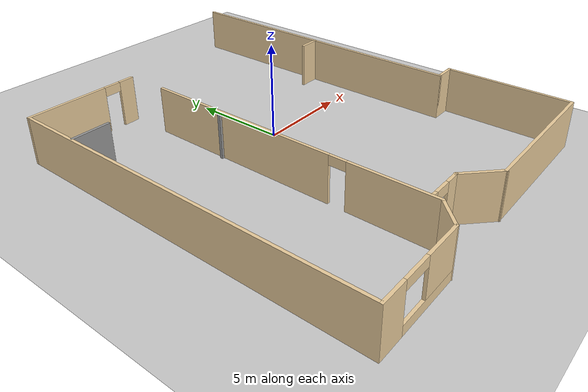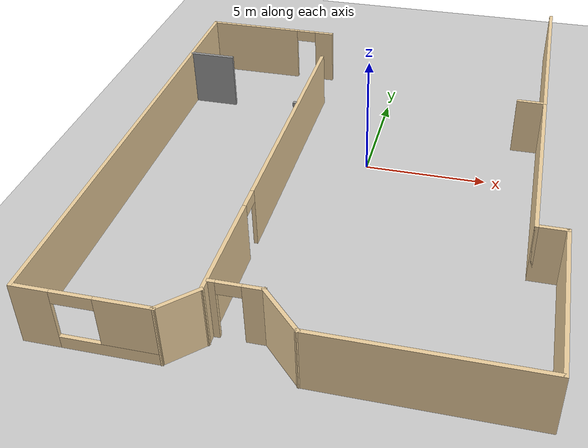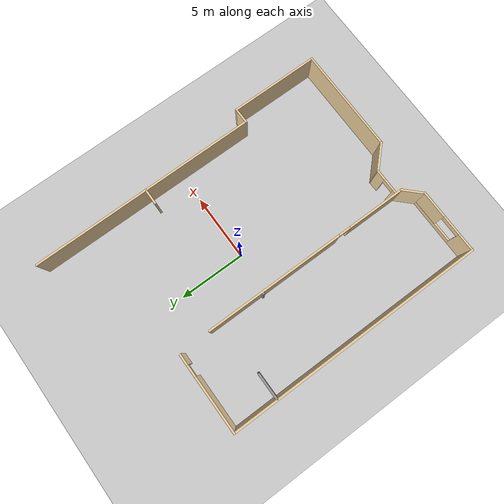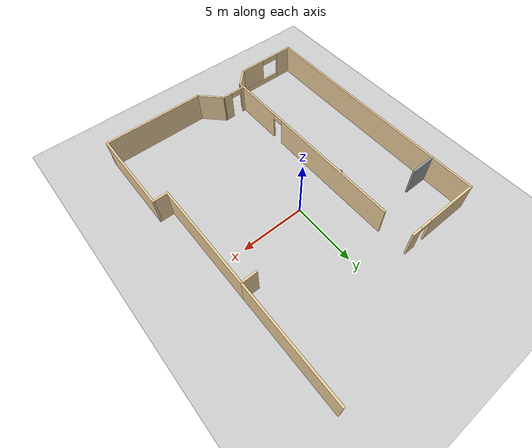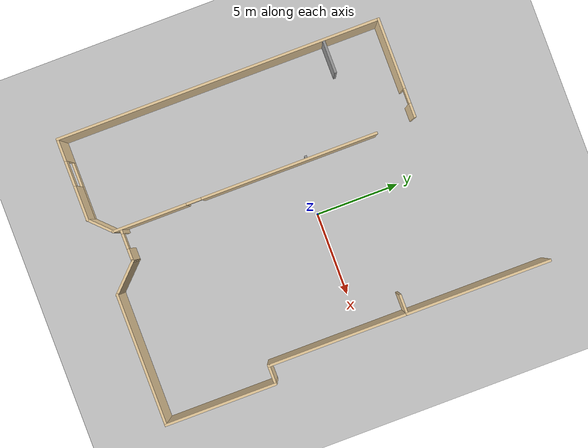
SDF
<sdf version="1.6">
 <world name="default">
  <light name="sun" type="directional">
   <pose>0 0 10 0 -0 0</pose>
   <diffuse>0.8 0.8 0.8 1</diffuse>
   <specular>0.2 0.2 0.2 1</specular>
   <attenuation>
    <range>1000</range>
    <constant>0.9</constant>
    <linear>0.01</linear>
    <quadratic>0.001</quadratic>
   </attenuation>
   <direction>-0.5 0.1 -0.9</direction>
  </light>
  <gravity>0 0 -9.8</gravity>
  <magnetic_field>6e-06 2.3e-05 -4.2e-05</magnetic_field>
  <atmosphere type="adiabatic"/>
  <physics name="default_physics" default="0" type="ode">
   <max_step_size>0.001</max_step_size>
   <real_time_factor>1</real_time_factor>
   <real_time_update_rate>1000</real_time_update_rate>
  </physics>
  <scene><ambient>0.4 0.4 0.4 1</ambient><background>0.7 0.7 0.7 1</background><shadows>1</shadows></scene>
  <spherical_coordinates>
   <surface_model>EARTH_WGS84</surface_model>
   <latitude_deg>0</latitude_deg>
   <longitude_deg>0</longitude_deg>
   <elevation>0</elevation>
   <heading_deg>0</heading_deg>
  </spherical_coordinates>
  <model name="Fleetwood.sdf">
   <pose>-0.47427 1.4205 0 0 -0 0</pose>
   <link name="Wall_30">
    <pose>-5.70288 5.64053 0 0 -0 3.14159</pose>
    <visual name="Wall_30_Visual_0">
     <pose>-2.5763 0 1.25 0 -0 0</pose>
     <geometry><box><size>0.8474 0.15 2.5</size></box></geometry>
     <material>
      <script><uri>file://media/materials/scripts/gazebo.material</uri><name>Gazebo/Grey</name></script>
      <ambient>0.921569 0.807843 0.615686 1</ambient>
     </material>
     <meta><layer>0</layer></meta>
    </visual>
    <collision name="Wall_30_Collision_0">
     <geometry><box><size>0.8474 0.15 2.5</size></box></geometry>
     <pose>-2.5763 0 1.25 0 -0 0</pose>
    </collision>
    <visual name="Wall_30_Visual_1">
     <pose>0.8737 0 1.25 0 -0 0</pose>
     <geometry><box><size>4.2526 0.15 2.5</size></box></geometry>
     <material>
      <script><uri>file://media/materials/scripts/gazebo.material</uri><name>Gazebo/Grey</name></script>
      <ambient>0.921569 0.807843 0.615686 1</ambient>
     </material>
     <meta><layer>0</layer></meta>
    </visual>
    <collision name="Wall_30_Collision_1">
     <geometry><box><size>4.2526 0.15 2.5</size></box></geometry>
     <pose>0.8737 0 1.25 0 -0 0</pose>
    </collision>
    <visual name="Wall_30_Visual_2">
     <pose>-1.7026 0 2.25 0 -0 0</pose>
     <geometry><box><size>0.9 0.15 0.5</size></box></geometry>
     <material>
      <script><uri>file://media/materials/scripts/gazebo.material</uri><name>Gazebo/Grey</name></script>
      <ambient>0.921569 0.807843 0.615686 1</ambient>
     </material>
     <meta><layer>0</layer></meta>
    </visual>
    <collision name="Wall_30_Collision_2">
     <geometry><box><size>0.9 0.15 0.5</size></box></geometry>
     <pose>-1.7026 0 2.25 0 -0 0</pose>
    </collision>
   </link>
   <link name="Wall_38">
    <collision name="Wall_38_Collision">
     <geometry><box><size>8.75 0.15 2.5</size></box></geometry>
     <pose>0 0 1.25 0 -0 0</pose>
    </collision>
    <visual name="Wall_38_Visual">
     <pose>0 0 1.25 0 -0 0</pose>
     <geometry><box><size>8.75 0.15 2.5</size></box></geometry>
     <material>
      <script><uri>file://media/materials/scripts/gazebo.material</uri><name>Gazebo/Grey</name></script>
      <ambient>0.921569 0.807843 0.615686 1</ambient>
     </material>
     <meta><layer>0</layer></meta>
    </visual>
    <pose>7.52788 5.62957 0 0 -0 -1.5708</pose>
   </link>
   <link name="Wall_39">
    <collision name="Wall_39_Collision">
     <geometry><box><size>1.25 0.15 2.5</size></box></geometry>
     <pose>0 0 1.25 0 -0 0</pose>
    </collision>
    <visual name="Wall_39_Visual">
     <pose>0 0 1.25 0 -0 0</pose>
     <geometry><box><size>1.25 0.15 2.5</size></box></geometry>
     <material>
      <script><uri>file://media/materials/scripts/gazebo.material</uri><name>Gazebo/Grey</name></script>
      <ambient>0.921569 0.807843 0.615686 1</ambient>
     </material>
     <meta><layer>0</layer></meta>
    </visual>
    <pose>6.97788 1.32957 0 0 -0 3.14159</pose>
   </link>
   <link name="Wall_43">
    <collision name="Wall_43_Collision">
     <geometry><box><size>19.5 0.15 2.5</size></box></geometry>
     <pose>0 0 1.25 0 -0 0</pose>
    </collision>
    <visual name="Wall_43_Visual">
     <pose>0 0 1.25 0 -0 0</pose>
     <geometry><box><size>19.5 0.15 2.5</size></box></geometry>
     <material>
      <script><uri>file://media/materials/scripts/gazebo.material</uri><name>Gazebo/Grey</name></script>
      <ambient>0.921569 0.807843 0.615686 1</ambient>
     </material>
     <meta><layer>0</layer></meta>
    </visual>
    <pose>-8.62788 -4.03447 0 0 -0 -1.5708</pose>
   </link>
   <link name="Wall_44">
    <pose>-6.20288 -13.7095 0 0 -0 0</pose>
    <visual name="Wall_44_Visual_0">
     <pose>-1.79969 0 1.25 0 -0 0</pose>
     <geometry><box><size>1.40061 0.15 2.5</size></box></geometry>
     <material>
      <script><uri>file://media/materials/scripts/gazebo.material</uri><name>Gazebo/Grey</name></script>
      <ambient>0.921569 0.807843 0.615686 1</ambient>
     </material>
     <meta><layer>0</layer></meta>
    </visual>
    <collision name="Wall_44_Collision_0">
     <geometry><box><size>1.40061 0.15 2.5</size></box></geometry>
     <pose>-1.79969 0 1.25 0 -0 0</pose>
    </collision>
    <visual name="Wall_44_Visual_1">
     <pose>0.700307 0 0.25 0 -0 0</pose>
     <geometry><box><size>3.59938 0.15 0.5</size></box></geometry>
     <material>
      <script><uri>file://media/materials/scripts/gazebo.material</uri><name>Gazebo/Grey</name></script>
      <ambient>0.921569 0.807843 0.615686 1</ambient>
     </material>
     <meta><layer>0</layer></meta>
    </visual>
    <collision name="Wall_44_Collision_1">
     <geometry><box><size>3.59938 0.15 0.5</size></box></geometry>
     <pose>0.700307 0 0.25 0 -0 0</pose>
    </collision>
    <visual name="Wall_44_Visual_2">
     <pose>1.45031 0 1.5 0 -0 0</pose>
     <geometry><box><size>2.09938 0.15 2</size></box></geometry>
     <material>
      <script><uri>file://media/materials/scripts/gazebo.material</uri><name>Gazebo/Grey</name></script>
      <ambient>0.921569 0.807843 0.615686 1</ambient>
     </material>
     <meta><layer>0</layer></meta>
    </visual>
    <collision name="Wall_44_Collision_2">
     <geometry><box><size>2.09938 0.15 2</size></box></geometry>
     <pose>1.45031 0 1.5 0 -0 0</pose>
    </collision>
    <visual name="Wall_44_Visual_3">
     <pose>-0.349385 0 2.25 0 -0 0</pose>
     <geometry><box><size>1.5 0.15 0.5</size></box></geometry>
     <material>
      <script><uri>file://media/materials/scripts/gazebo.material</uri><name>Gazebo/Grey</name></script>
      <ambient>0.921569 0.807843 0.615686 1</ambient>
     </material>
     <meta><layer>0</layer></meta>
    </visual>
    <collision name="Wall_44_Collision_3">
     <geometry><box><size>1.5 0.15 0.5</size></box></geometry>
     <pose>-0.349385 0 2.25 0 -0 0</pose>
    </collision>
   </link>
   <link name="Wall_45">
    <collision name="Wall_45_Collision">
     <geometry><box><size>1.75 0.15 2.5</size></box></geometry>
     <pose>0 0 1.25 0 -0 0</pose>
    </collision>
    <visual name="Wall_45_Visual">
     <pose>0 0 1.25 0 -0 0</pose>
     <geometry><box><size>1.75 0.15 2.5</size></box></geometry>
     <material>
      <script><uri>file://media/materials/scripts/gazebo.material</uri><name>Gazebo/Grey</name></script>
      <ambient>0.921569 0.807843 0.615686 1</ambient>
     </material>
     <meta><layer>0</layer></meta>
    </visual>
    <pose>-3.2122 -13.1438 0 0 -0 0.785398</pose>
   </link>
   <link name="Wall_46">
    <pose>-2.64651 -4.6531 0 0 -0 1.5708</pose>
    <visual name="Wall_46_Visual_0">
     <pose>-5.76354 0 1.25 0 -0 0</pose>
     <geometry><box><size>4.47293 0.15 2.5</size></box></geometry>
     <material>
      <script><uri>file://media/materials/scripts/gazebo.material</uri><name>Gazebo/Grey</name></script>
      <ambient>0.921569 0.807843 0.615686 1</ambient>
     </material>
     <meta><layer>0</layer></meta>
    </visual>
    <collision name="Wall_46_Collision_0">
     <geometry><box><size>4.47293 0.15 2.5</size></box></geometry>
     <pose>-5.76354 0 1.25 0 -0 0</pose>
    </collision>
    <visual name="Wall_46_Visual_1">
     <pose>2.68647 0 1.25 0 -0 0</pose>
     <geometry><box><size>10.6271 0.15 2.5</size></box></geometry>
     <material>
      <script><uri>file://media/materials/scripts/gazebo.material</uri><name>Gazebo/Grey</name></script>
      <ambient>0.921569 0.807843 0.615686 1</ambient>
     </material>
     <meta><layer>0</layer></meta>
    </visual>
    <collision name="Wall_46_Collision_1">
     <geometry><box><size>10.6271 0.15 2.5</size></box></geometry>
     <pose>2.68647 0 1.25 0 -0 0</pose>
    </collision>
    <visual name="Wall_46_Visual_2">
     <pose>-3.07707 0 2.25 0 -0 0</pose>
     <geometry><box><size>0.9 0.15 0.5</size></box></geometry>
     <material>
      <script><uri>file://media/materials/scripts/gazebo.material</uri><name>Gazebo/Grey</name></script>
      <ambient>0.921569 0.807843 0.615686 1</ambient>
     </material>
     <meta><layer>0</layer></meta>
    </visual>
    <collision name="Wall_46_Collision_2">
     <geometry><box><size>0.9 0.15 0.5</size></box></geometry>
     <pose>-3.07707 0 2.25 0 -0 0</pose>
    </collision>
   </link>
   <link name="Wall_49">
    <collision name="Wall_49_Collision">
     <geometry><box><size>2 0.15 2.5</size></box></geometry>
     <pose>0 0 1.25 0 -0 0</pose>
    </collision>
    <visual name="Wall_49_Visual">
     <pose>0 0 1.25 0 -0 0</pose>
     <geometry><box><size>2 0.15 2.5</size></box></geometry>
     <material>
      <script><uri>file://media/materials/scripts/gazebo.material</uri><name>Gazebo/Grey</name></script>
      <ambient>1 1 1 1</ambient>
     </material>
     <meta><layer>0</layer></meta>
    </visual>
    <pose>-7.62611 2.31731 0 0 -0 3.14159</pose>
   </link>
   <link name="Wall_60">
    <collision name="Wall_60_Collision">
     <geometry><box><size>0.15 0.15 2.5</size></box></geometry>
     <pose>0 0 1.25 0 -0 0</pose>
    </collision>
    <visual name="Wall_60_Visual">
     <pose>0 0 1.25 0 -0 0</pose>
     <geometry><box><size>0.15 0.15 2.5</size></box></geometry>
     <material>
      <script><uri>file://media/materials/scripts/gazebo.material</uri><name>Gazebo/Grey</name></script>
      <ambient>1 1 1 1</ambient>
     </material>
     <meta><layer>0</layer></meta>
    </visual>
    <pose>-2.77788 -0.924873 0 0 -0 0</pose>
   </link>
   <link name="Wall_64">
    <collision name="Wall_64_Collision">
     <geometry><box><size>8.5 0.15 2.5</size></box></geometry>
     <pose>0 0 1.25 0 -0 0</pose>
    </collision>
    <visual name="Wall_64_Visual">
     <pose>0 0 1.25 0 -0 0</pose>
     <geometry><box><size>8.5 0.15 2.5</size></box></geometry>
     <material>
      <script><uri>file://media/materials/scripts/gazebo.material</uri><name>Gazebo/Grey</name></script>
      <ambient>0.921569 0.807843 0.615686 1</ambient>
     </material>
     <meta><layer>0</layer></meta>
    </visual>
    <pose>7.52788 -2.84543 0 0 -0 -1.5708</pose>
   </link>
   <link name="Wall_65">
    <collision name="Wall_65_Collision">
     <geometry><box><size>1.25 0.15 2.5</size></box></geometry>
     <pose>0 0 1.25 0 -0 0</pose>
    </collision>
    <visual name="Wall_65_Visual">
     <pose>0 0 1.25 0 -0 0</pose>
     <geometry><box><size>1.25 0.15 2.5</size></box></geometry>
     <material>
      <script><uri>file://media/materials/scripts/gazebo.material</uri><name>Gazebo/Grey</name></script>
      <ambient>0.921569 0.807843 0.615686 1</ambient>
     </material>
     <meta><layer>0</layer></meta>
    </visual>
    <pose>8.07788 -7.02043 0 0 -0 0</pose>
   </link>
   <link name="Wall_66">
    <collision name="Wall_66_Collision">
     <geometry><box><size>6.75 0.15 2.5</size></box></geometry>
     <pose>0 0 1.25 0 -0 0</pose>
    </collision>
    <visual name="Wall_66_Visual">
     <pose>0 0 1.25 0 -0 0</pose>
     <geometry><box><size>6.75 0.15 2.5</size></box></geometry>
     <material>
      <script><uri>file://media/materials/scripts/gazebo.material</uri><name>Gazebo/Grey</name></script>
      <ambient>0.921569 0.807843 0.615686 1</ambient>
     </material>
     <meta><layer>0</layer></meta>
    </visual>
    <pose>8.62788 -10.3204 0 0 -0 -1.5708</pose>
   </link>
   <link name="Wall_67">
    <collision name="Wall_67_Collision">
     <geometry><box><size>8 0.15 2.5</size></box></geometry>
     <pose>0 0 1.25 0 -0 0</pose>
    </collision>
    <visual name="Wall_67_Visual">
     <pose>0 0 1.25 0 -0 0</pose>
     <geometry><box><size>8 0.15 2.5</size></box></geometry>
     <material>
      <script><uri>file://media/materials/scripts/gazebo.material</uri><name>Gazebo/Grey</name></script>
      <ambient>0.921569 0.807843 0.615686 1</ambient>
     </material>
     <meta><layer>0</layer></meta>
    </visual>
    <pose>4.70288 -13.6204 0 0 -0 3.14159</pose>
   </link>
   <link name="Wall_68">
    <collision name="Wall_68_Collision">
     <geometry><box><size>2.25 0.15 2.5</size></box></geometry>
     <pose>0 0 1.25 0 -0 0</pose>
    </collision>
    <visual name="Wall_68_Visual">
     <pose>0 0 1.25 0 -0 0</pose>
     <geometry><box><size>2.25 0.15 2.5</size></box></geometry>
     <material>
      <script><uri>file://media/materials/scripts/gazebo.material</uri><name>Gazebo/Grey</name></script>
      <ambient>0.921569 0.807843 0.615686 1</ambient>
     </material>
     <meta><layer>0</layer></meta>
    </visual>
    <pose>0.03542 -12.878 0 0 -0 2.35619</pose>
   </link>
   <link name="Wall_69">
    <pose>-1.63204 -12.1355 0 0 -0 3.14159</pose>
    <visual name="Wall_69_Visual_0">
     <pose>-0.595699 0 1.25 0 -0 0</pose>
     <geometry><box><size>0.808601 0.15 2.5</size></box></geometry>
     <material>
      <script><uri>file://media/materials/scripts/gazebo.material</uri><name>Gazebo/Grey</name></script>
      <ambient>0.921569 0.807843 0.615686 1</ambient>
     </material>
     <meta><layer>0</layer></meta>
    </visual>
    <collision name="Wall_69_Collision_0">
     <geometry><box><size>0.808601 0.15 2.5</size></box></geometry>
     <pose>-0.595699 0 1.25 0 -0 0</pose>
    </collision>
    <visual name="Wall_69_Visual_1">
     <pose>0.854301 0 1.25 0 -0 0</pose>
     <geometry><box><size>0.291399 0.15 2.5</size></box></geometry>
     <material>
      <script><uri>file://media/materials/scripts/gazebo.material</uri><name>Gazebo/Grey</name></script>
      <ambient>0.921569 0.807843 0.615686 1</ambient>
     </material>
     <meta><layer>0</layer></meta>
    </visual>
    <collision name="Wall_69_Collision_1">
     <geometry><box><size>0.291399 0.15 2.5</size></box></geometry>
     <pose>0.854301 0 1.25 0 -0 0</pose>
    </collision>
    <visual name="Wall_69_Visual_2">
     <pose>0.258601 0 2.25 0 -0 0</pose>
     <geometry><box><size>0.9 0.15 0.5</size></box></geometry>
     <material>
      <script><uri>file://media/materials/scripts/gazebo.material</uri><name>Gazebo/Grey</name></script>
      <ambient>0.921569 0.807843 0.615686 1</ambient>
     </material>
     <meta><layer>0</layer></meta>
    </visual>
    <collision name="Wall_69_Collision_2">
     <geometry><box><size>0.9 0.15 0.5</size></box></geometry>
     <pose>0.258601 0 2.25 0 -0 0</pose>
    </collision>
   </link>
   <static>1</static>
  </model>
  <model name="ground_plane">
   <static>1</static>
   <link name="link">
    <collision name="collision">
     <geometry><plane><normal>0 0 1</normal><size>100 100</size></plane></geometry>
     <surface><friction><ode><mu>100</mu><mu2>50</mu2></ode></friction></surface>
    </collision>
    <visual name="visual">
     <cast_shadows>0</cast_shadows>
     <geometry><plane><normal>0 0 1</normal><size>100 100</size></plane></geometry>
     <material>
      <script><uri>file://media/materials/scripts/gazebo.material</uri><name>Gazebo/Grey</name></script>
     </material>
    </visual>
   </link>
   <pose>0.21962 0.163473 0 0 -0 0</pose>
  </model>
 </world>
</sdf>
